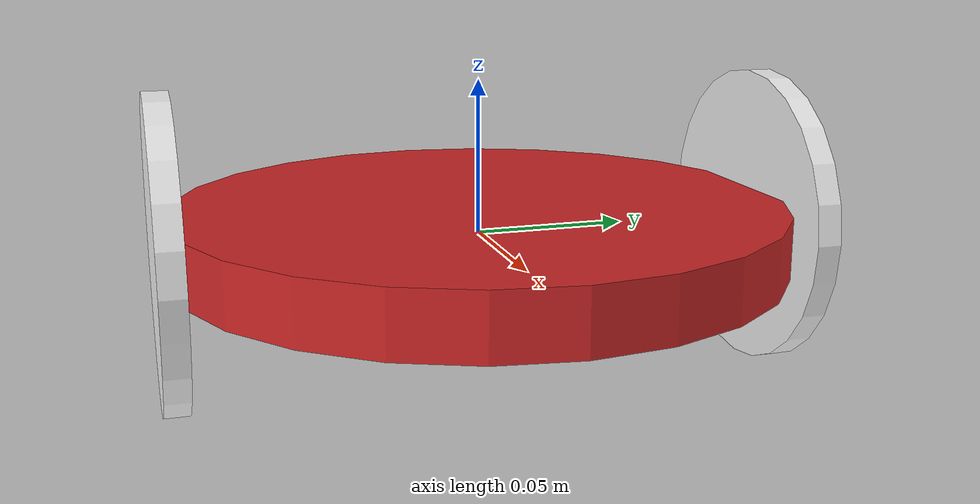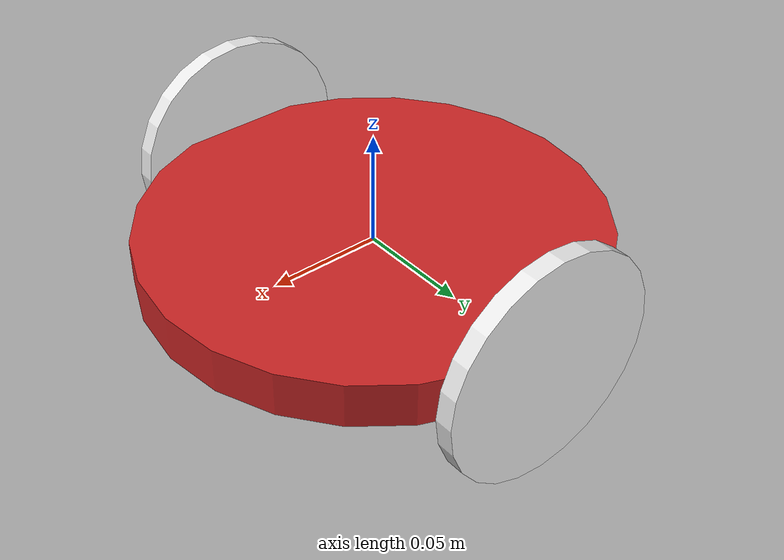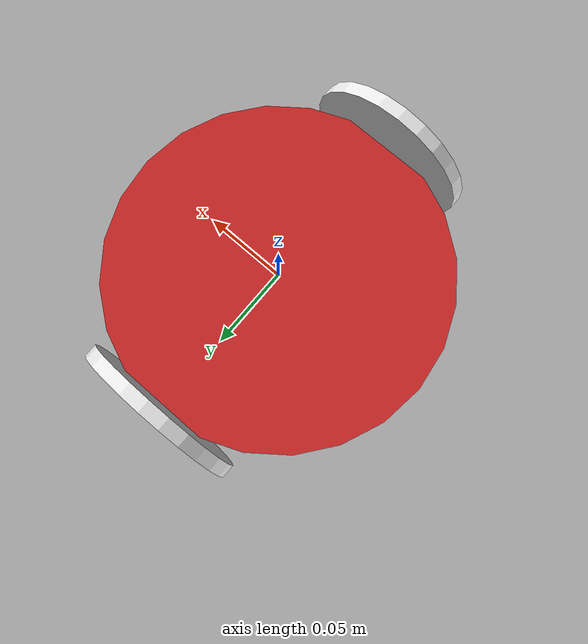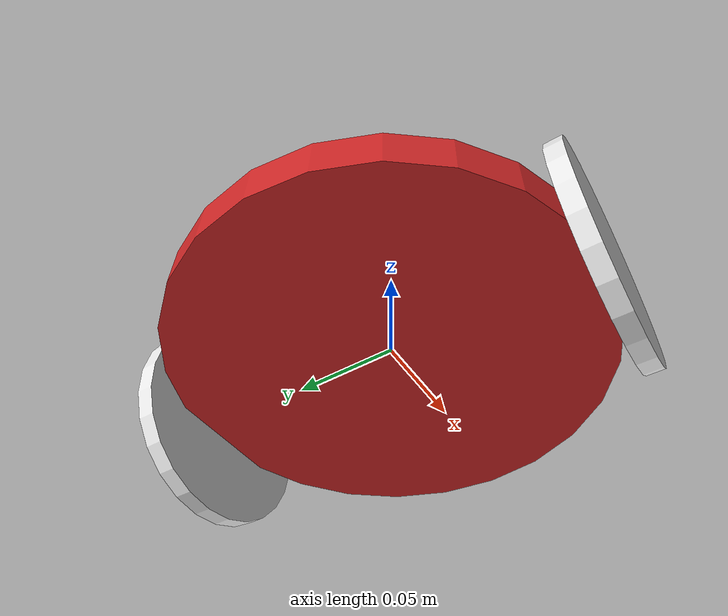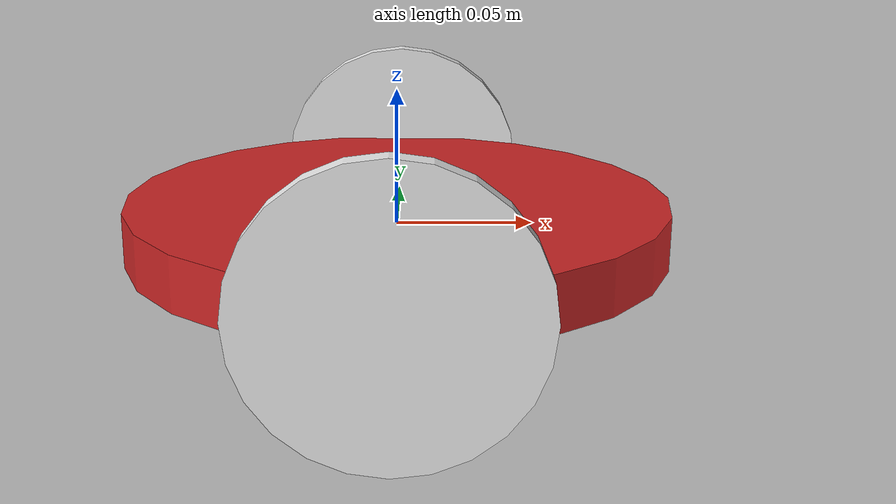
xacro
<?xml version="1.0" ?>
<robot name="disk" xmlns:xacro="http://www.ros.org/wiki/xacro">

<!-- şase  -->
  <link name="link_chassis">
    <!-- pose and inertial -->
    <pose>0 0 0.1 0 0 0</pose>
    <inertial>
      <mass value="0.5"/>
      <origin rpy="0 0 0" xyz="0 0 0"/>
      <inertia ixx="0.002786458333" ixy="0" ixz="0" iyy="0.002786458333" iyz="0" izz="0.00390625"/>
    </inertial>
    <!-- body -->
    <collision name="collision_chassis">
    <origin xyz="0 0 0" rpy="0 0 0"/>
      <geometry>
        <cylinder radius="0.100" length="0.02"/>
      </geometry>
    </collision>
    <visual>
      <origin rpy="0 0 0" xyz="0 0 0"/>
      <geometry>
        <cylinder radius="0.100" length="0.02"/>
      </geometry>
      <material name= "red"/>
    </visual>
</link>

<!--sol tekerlek -->

<link name="link_left_wheel">
    <inertial>
      <mass value="0.25"/>
      <origin rpy="0 1.5707 1.5707" xyz="0 0 0"/>
      <inertia ixx="0.00015" ixy="0" ixz="0" iyy="0.00015" iyz="0" izz="0.0003125"/>
    </inertial>
    <collision name="link_left_wheel_collision">
     <origin rpy="0 1.5707 1.5707" xyz="0 0 0"/>
      <geometry>
       <cylinder length="0.008" radius="0.05"/>
      </geometry>
    </collision>
    <visual name="link_left_wheel_visual">
      <origin rpy="0 1.5707 1.5707" xyz="0 0 0"/>
      <geometry>
        <cylinder length="0.008" radius="0.05"/>
      </geometry>
    </visual>
  </link>

  <joint name="joint_left_wheel" type="continuous">
    <origin rpy="0 0 0" xyz="0 -0.1 0"/>
    <child link="link_left_wheel"/>
    <parent link="link_chassis"/>
    <axis rpy="0 0 0" xyz="0 1 0"/>
    <limit effort="10000" velocity="1000"/>
    <joint_properties damping="1.0" friction="1.0"/>
</joint>

<!--sağ tekerlek-->

<link name="link_right_wheel">
    <inertial>
      <mass value="0.25"/>
      <origin rpy="0 1.5707 1.5707" xyz="0 0 0"/>
      <inertia ixx="0.00015" ixy="0" ixz="0" iyy="0.00015" iyz="0" izz="0.0003125"/>
    </inertial>
    <collision name="link_right_wheel_collision">
      <origin rpy="0 1.5707 1.5707" xyz="0 0 0"/>
      <geometry>
        <cylinder length="0.008" radius="0.05"/>
      </geometry>
    </collision>
    <visual name="link_right_wheel_visual">
      <origin rpy="0 1.5707 1.5707" xyz="0 0 0"/>
      <geometry>
        <cylinder length="0.008" radius="0.05"/>
      </geometry>
    </visual>
  </link>

  <joint name="joint_right_wheel" type="continuous">
    <origin rpy="0 0 0" xyz="0 0.1 0"/>
    <child link="link_right_wheel"/>
    <parent link="link_chassis"/>
    <axis rpy="0 0 0" xyz="0 1 0"/>
    <limit effort="10000" velocity="1000"/>
    <joint_properties damping="1.0" friction="1.0"/>
</joint>

  <gazebo>
    <plugin filename="libgazebo_ros_diff_drive.so" name="differential_drive_controller">
      <legacyMode>false</legacyMode>
      <alwaysOn>true</alwaysOn>
      <updateRate>20</updateRate>
      <leftJoint>joint_left_wheel</leftJoint>
      <rightJoint>joint_right_wheel</rightJoint>
      <wheelSeparation>0.2</wheelSeparation>
      <wheelDiameter>0.2</wheelDiameter>
      <torque>20</torque>
      <commandTopic>cmd_vel</commandTopic>
      <odometryTopic>odom</odometryTopic>
      <odometryFrame>odom</odometryFrame>
      <robotBaseFrame>link_chassis</robotBaseFrame>
    </plugin>
    </gazebo>

  <gazebo reference="link_chassis">
    <material>Gazebo/Black</material>
  </gazebo>

  <gazebo reference="link_left_wheel">
    <material>Gazebo/White</material>
  </gazebo>

  <gazebo reference="link_right_wheel">
    <material>Gazebo/White</material>
  </gazebo>

</robot>
